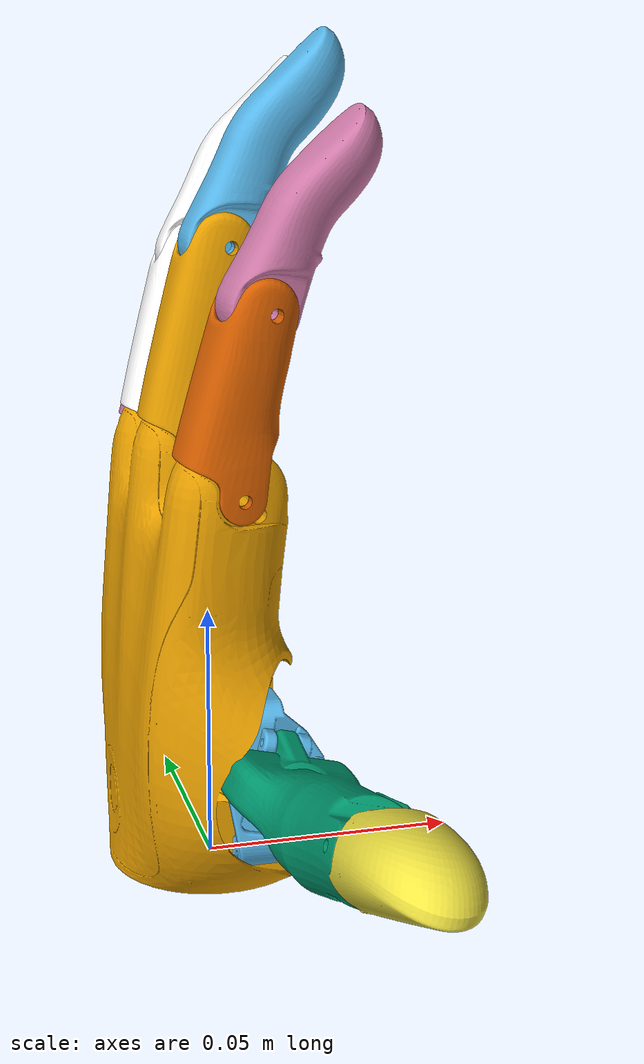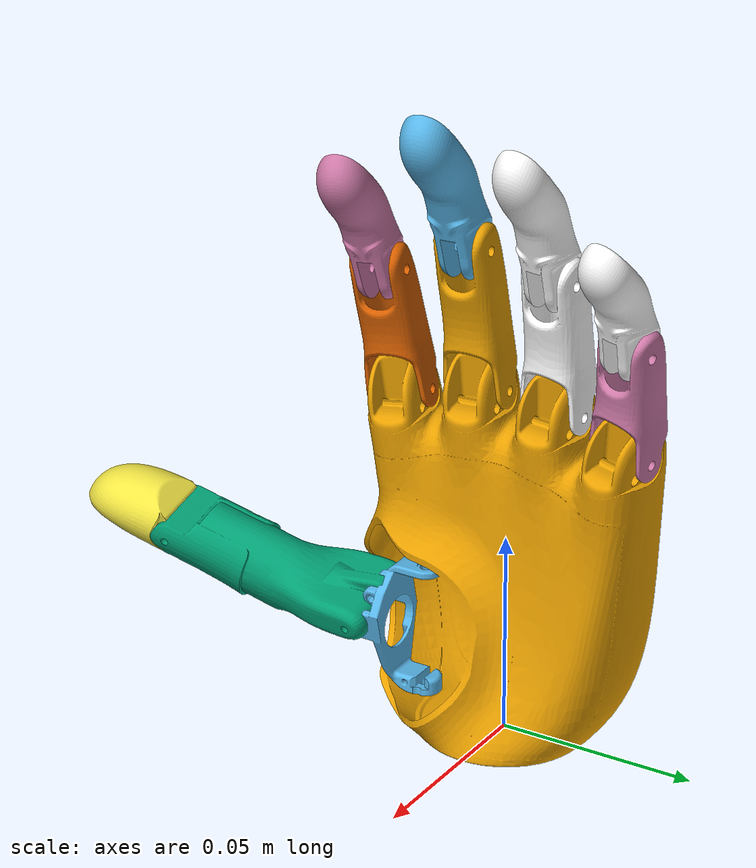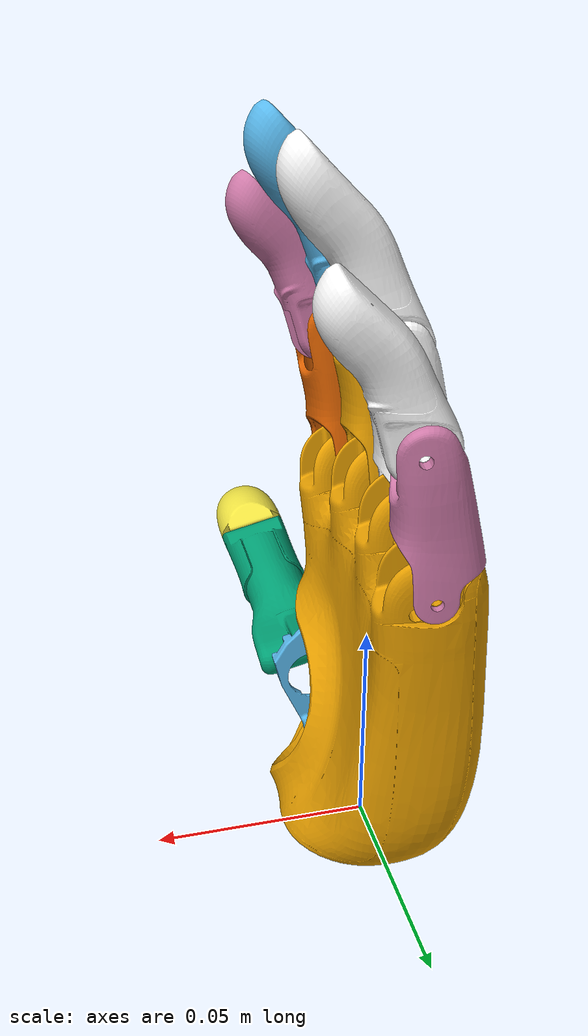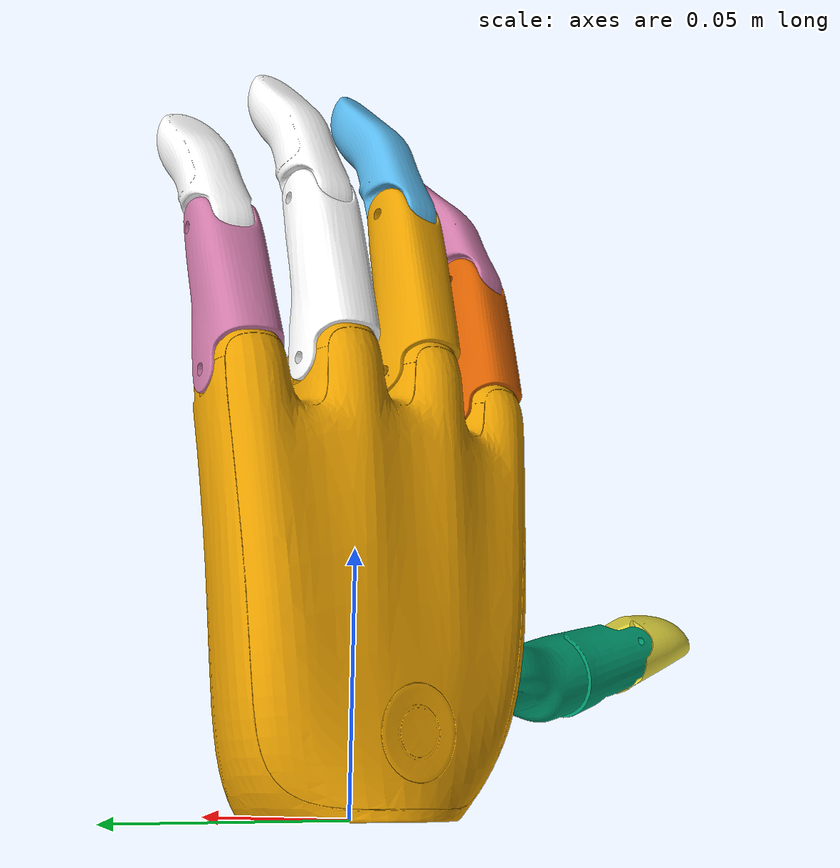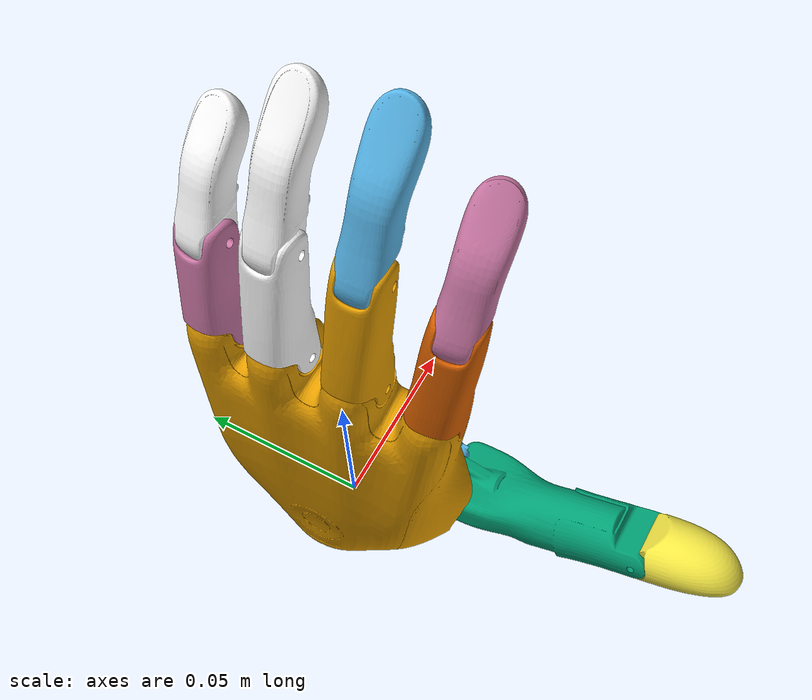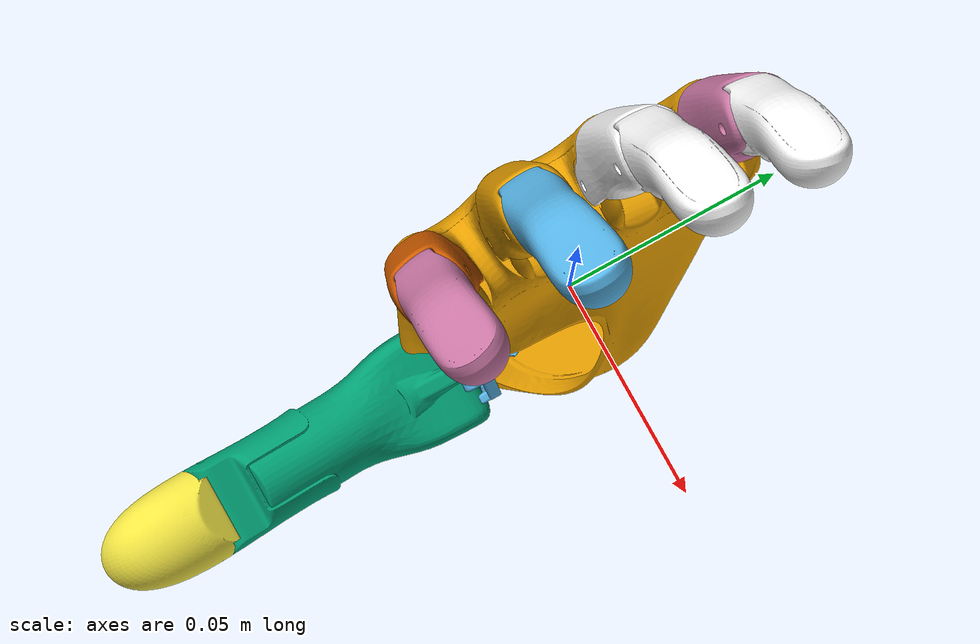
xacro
<?xml version="1.0" encoding="utf-8"?>
<robot name="BrainCo_$(arg type)" xmlns:xacro="http://www.ros.org/wiki/xacro">

	<xacro:arg name="type" default="Revo2"/>
	<xacro:arg name="direction" default="1"/>

	<xacro:include filename="$(find brainco_description)/xacro/revo2.xacro"/>

	<!-- 创建左手 (direction=1) -->
	<xacro:BraincoGripper name="" direction="$(arg direction)"/>

</robot>

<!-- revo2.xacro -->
<robot xmlns:xacro="http://www.ros.org/wiki/xacro">

	<xacro:macro name="BraincoGripper" params="name direction:=1">
		<xacro:property name="prefix" value="${name + '_' if name else ''}"/>

		<link name="${prefix}hand_base">
			<inertial>
				<origin xyz="-0.00478670623240344 ${direction*0.00141981128680179} 0.0505239077176535"/>
				<mass value="0.238"/>
				<inertia
						ixx="2.2266510056133E-05"
						ixy="${direction*-2.6318583761649E-07}"
						ixz="1.83638592892823E-07"
						iyy="1.55367220548952E-05"
						iyz="${direction*1.26586485241028E-06}"
						izz="8.58669326263691E-06"/>
			</inertial>
			<visual>
				<geometry>
					<mesh filename="file://$(find brainco_description)/meshes/revo2/base_link.obj" scale="1 ${direction} 1"/>
				</geometry>
			</visual>
			<collision>
				<geometry>
					<mesh filename="file://$(find brainco_description)/meshes/revo2/base_link.obj" scale="1 ${direction} 1"/>
				</geometry>
			</collision>
		</link>

		<!-- 拇指部分 -->
		<link name="${prefix}thumb_metacarpal_Link">
			<inertial>
				<origin xyz="${direction*1.52303696287007E-05} ${direction*-0.00707240283482268} ${direction*-0.00420839832903629}"/>
				<mass value="0.01"/>
				<inertia
						ixx="1.59238866130872E-07"
						ixy="4.69114607598504E-09"
						ixz="4.93233725002146E-10"
						iyy="1.60911967461755E-07"
						iyz="1.48144948560702E-08"
						izz="5.13544258620214E-08"/>
			</inertial>
			<visual>
				<geometry>
					<mesh filename="file://$(find brainco_description)/meshes/revo2/thumb_metacarpal.obj" scale="${direction} ${direction} ${direction}"/>
				</geometry>
			</visual>
			<collision>
				<geometry>
					<mesh filename="file://$(find brainco_description)/meshes/revo2/thumb_metacarpal.obj" scale="${direction} ${direction} ${direction}"/>
				</geometry>
			</collision>
		</link>

		<joint name="${prefix}thumb_metacarpal_joint" type="revolute">
			<origin
					xyz="${direction == 1 and 0.0045 or 0.005619} ${direction == 1 and -0.019 or 0.019867} 0.027825"
					rpy="${1.5708 - direction * 1.5708} 0 ${direction == 1 and 0.16787 or 2.9637}"/>
			<parent link="${prefix}hand_base"/>
			<child link="${prefix}thumb_metacarpal_Link"/>
			<axis xyz="0 0 1"/>
			<limit lower="0" upper="1.5184" effort="0.5" velocity="2.6175"/>
		</joint>

		<link name="${prefix}thumb_proximal_Link">
			<inertial>
				<origin xyz="3.41001513141231E-07 0.0250090688174992 -0.0017505675193664"/>
				<mass value="0.05"/>
				<inertia
						ixx="3.23318665954068E-06"
						ixy="1.54514148596387E-10"
						ixz="-1.24375216968143E-11"
						iyy="5.64488567432875E-07"
						iyz="5.04309083812214E-08"
						izz="3.39928573090826E-06"/>
			</inertial>
			<visual>
				<geometry>
					<mesh filename="file://$(find brainco_description)/meshes/revo2/thumb_proximal.obj"/>
				</geometry>
			</visual>
			<collision>
				<geometry>
					<mesh filename="file://$(find brainco_description)/meshes/revo2/thumb_proximal.obj"/>
				</geometry>
			</collision>
		</link>

		<joint name="${prefix}thumb_proximal_joint" type="revolute">
			<origin
					xyz="0 ${direction*-0.014227} 0"
					rpy="${direction == 1 and 0.17488 or -2.9667} -0.23736 2.9737"/>
			<parent
					link="${prefix}thumb_metacarpal_Link"/>
			<child
					link="${prefix}thumb_proximal_Link"/>
			<axis
					xyz="1 0 0"/>
			<limit
					lower="0"
					upper="1.0472"
					effort="1.1"
					velocity="2.5303"/>
		</joint>

		<link name="${prefix}thumb_distal_Link">
			<inertial>
				<origin
						xyz="-1.65618684180163E-07 0.0117550891981017 1.1366609064185E-05"
						/>
				<mass
						value="0.01"/>
				<inertia
						ixx="1.6780928553031E-07"
						ixy="1.91856562375255E-11"
						ixz="-2.694752026736E-12"
						iyy="1.15357239984326E-07"
						iyz="1.25182560702848E-08"
						izz="2.1956615213811E-07"/>
			</inertial>
			<visual>
				<geometry>
					<mesh filename="file://$(find brainco_description)/meshes/revo2/thumb_distal.obj"/>
				</geometry>
			</visual>
			<collision>
				<geometry>
					<mesh filename="file://$(find brainco_description)/meshes/revo2/thumb_distal.obj"/>
				</geometry>
			</collision>
		</link>

		<joint name="${prefix}thumb_distal_joint" type="revolute">
			<origin
					xyz="0 0.052 0"
					/>
			<parent
					link="${prefix}thumb_proximal_Link"/>
			<child
					link="${prefix}thumb_distal_Link"/>
			<axis
					xyz="1 0 0"/>
			<limit
					lower="0"
					upper="1.0472"
					effort="1.1"
					velocity="2.5303"/>
			<mimic
					joint="${prefix}thumb_proximal_joint"
					multiplier="1"
					offset="0"/>
		</joint>

		<link name="${prefix}thumb_tip_Link">
			<inertial>
				<origin xyz="-4.85722573273506E-17 -4.16333634234434E-17 -3.46944695195361E-18"/>
				<mass value="0.001"/>
				<inertia
						ixx="1.63624617374468E-15"
						ixy="0"
						ixz="0"
						iyy="1.63624617374468E-15"
						iyz="3.85185988877447E-33"
						izz="1.63624617374468E-15"/>
			</inertial>
		</link>

		<joint name="${prefix}thumb_tip_joint" type="revolute">
			<origin
					xyz="0 0.026528781163583 -0.00177344281307927"
					rpy="${direction == 1 and 0.0667504507189052 or -0.06675} 0 ${direction == 1 and 3.14159265358979 or 0}"/>
			<parent
					link="${prefix}thumb_distal_Link"/>
			<child
					link="${prefix}thumb_tip_Link"/>
			<axis
					xyz="-1 0 0"/>
			<limit
					lower="0"
					upper="0"
					effort="0"
					velocity="0"/>
		</joint>

		<!-- 食指部分 -->
		<link name="${prefix}index_proximal_Link">
			<inertial>
				<origin
						xyz="-0.002235387426012 -3.80544615179342E-06 0.0176439423080373"
						/>
				<mass
						value="0.009"/>
				<inertia
						ixx="2.51863526940901E-07"
						ixy="-3.10934654014177E-11"
						ixz="-6.36901300651624E-09"
						iyy="2.36343210839019E-07"
						iyz="-1.71663811116817E-10"
						izz="9.30397543724724E-08"/>
			</inertial>
			<visual>
				<geometry>
					<mesh
							filename="file://$(find brainco_description)/meshes/revo2/index_proximal.obj"/>
				</geometry>
			</visual>
			<collision>
				<geometry>
					<mesh
							filename="file://$(find brainco_description)/meshes/revo2/index_proximal.obj"/>
				</geometry>
			</collision>
		</link>

		<joint name="${prefix}index_proximal_joint" type="revolute">
			<origin
					xyz="-0.0021349 ${direction*-0.029578} 0.080876"
					rpy="${direction*0.11819} 0.14743 ${direction*0.17422}"/>
			<parent
					link="${prefix}hand_base"/>
			<child
					link="${prefix}index_proximal_Link"/>
			<axis
					xyz="0 1 0"/>
			<limit
					lower="0"
					upper="1.4661"
					effort="2"
					velocity="2.2685"/>
		</joint>

		<link name="${prefix}index_distal_Link">
			<inertial>
				<origin xyz="0.00418325886379583 -8.45607972810303E-08 0.0153641608762859"/>
				<mass value="0.009"/>
				<inertia
						ixx="3.65266271559531E-07"
						ixy="5.6892108332606E-13"
						ixz="-1.02335061442931E-07"
						iyy="3.96961530855654E-07"
						iyz="7.73961385851005E-13"
						izz="1.04991723103838E-07"/>
			</inertial>
			<visual>
				<geometry>
					<mesh filename="file://$(find brainco_description)/meshes/revo2/index_distal.obj"/>
				</geometry>
			</visual>
			<collision>
				<geometry>
					<mesh filename="file://$(find brainco_description)/meshes/revo2/index_distal.obj"/>
				</geometry>
			</collision>
		</link>

		<joint name="${prefix}index_distal_joint" type="revolute">
			<origin
					xyz="0 0 0.032"
					/>
			<parent
					link="${prefix}index_proximal_Link"/>
			<child
					link="${prefix}index_distal_Link"/>
			<axis
					xyz="0 1 0"/>
			<limit
					lower="0"
					upper="1.693"
					effort="2"
					velocity="2.2685"/>
			<mimic
					joint="${prefix}index_proximal_joint"
					multiplier="1.155"
					offset="0"/>
		</joint>

		<link name="${prefix}index_tip_Link">
			<inertial>
				<origin
						xyz="6.69832245225876E-13 9.73495589695617E-12 2.23557283796083E-13"
						/>
				<mass
						value="0.001"/>
				<inertia
						ixx="1.63624617374468E-15"
						ixy="6.16297582203915E-32"
						ixz="0"
						iyy="1.63624617374468E-15"
						iyz="2.46519032881566E-32"
						izz="1.63624617374468E-15"/>
			</inertial>
		</link>

		<joint name="${prefix}index_tip_joint" type="revolute">
			<origin
					xyz="0.011097 0 0.035739"
					rpy="0 0.48723 0"/>
			<parent
					link="${prefix}index_distal_Link"/>
			<child
					link="${prefix}index_tip_Link"/>
			<axis
					xyz="0 1 0"/>
			<limit
					lower="1"
					upper="1"
					effort="1"
					velocity="1"/>
		</joint>

		<!-- 中指部分 -->
		<link name="${prefix}middle_proximal_Link">
			<inertial>
				<origin
						xyz="-0.00222419445309931 -3.61990820813615E-06 0.0203049526045434"
						/>
				<mass
						value="0.009"/>
				<inertia
						ixx="3.66885320718611E-07"
						ixy="-3.64303343703497E-11"
						ixz="-9.77995332041374E-09"
						iyy="3.5252138716754E-07"
						iyz="-2.5809821190624E-10"
						izz="1.12242284171831E-07"/>
			</inertial>
			<visual>
				<geometry>
					<mesh
							filename="file://$(find brainco_description)/meshes/revo2/middle_proximal.obj"/>
				</geometry>
			</visual>
			<collision>
				<geometry>
					<mesh
							filename="file://$(find brainco_description)/meshes/revo2/middle_proximal.obj"/>
				</geometry>
			</collision>
		</link>

		<joint name="${prefix}middle_proximal_joint" type="revolute">
			<origin
					xyz="-0.0045935 ${direction*-0.010061} 0.084993"
					rpy="${direction*0.039468} 0.1483 ${direction*0.057975}"/>
			<parent
					link="${prefix}hand_base"/>
			<child
					link="${prefix}middle_proximal_Link"/>
			<axis
					xyz="0 1 0"/>
			<limit
					lower="0"
					upper="1.4661"
					effort="2"
					velocity="2.2685"/>
		</joint>

		<link name="${prefix}middle_distal_Link">
			<inertial>
				<origin xyz="0.00269750139301865 3.27210103736979E-07 0.0183076461156786"/>
				<mass value="0.009"/>
				<inertia
						ixx="5.88341898887764E-07"
						ixy="-1.34073376318216E-12"
						ixz="-1.04743131832206E-07"
						iyy="6.07118927271625E-07"
						iyz="-1.31817421243194E-11"
						izz="1.11265454837883E-07"/>
			</inertial>
			<visual>
				<geometry>
					<mesh filename="file://$(find brainco_description)/meshes/revo2/middle_distal.obj"/>
				</geometry>
			</visual>
			<collision>
				<geometry>
					<mesh filename="file://$(find brainco_description)/meshes/revo2/middle_distal.obj"/>
				</geometry>
			</collision>
		</link>

		<joint name="${prefix}middle_distal_joint" type="revolute">
			<origin
					xyz="0 0 0.037"
					rpy="0 0.12654 0"/>
			<parent
					link="${prefix}middle_proximal_Link"/>
			<child
					link="${prefix}middle_distal_Link"/>
			<axis
					xyz="0 1 0"/>
			<limit
					lower="0"
					upper="1.693"
					effort="2"
					velocity="2.2685"/>
			<mimic
					joint="${prefix}middle_proximal_joint"
					multiplier="1.155"
					offset="0"/>
		</joint>

		<link name="${prefix}middle_tip_Link">
			<inertial>
				<origin
						xyz="3.12250225675825E-16 -1.90819582357449E-17 5.55111512312578E-17"
						/>
				<mass
						value="0.001"/>
				<inertia
						ixx="1.63624617374468E-15"
						ixy="0"
						ixz="-4.93038065763132E-32"
						iyy="1.63624617374468E-15"
						iyz="9.24446373305873E-33"
						izz="1.63624617374468E-15"/>
			</inertial>
		</link>

		<joint name="${prefix}middle_tip_joint" type="revolute">
			<origin
					xyz="0.0073534 0 0.041703"
					rpy="0 0.34907 0"/>
			<parent
					link="${prefix}middle_distal_Link"/>
			<child
					link="${prefix}middle_tip_Link"/>
			<axis
					xyz="0 1 0"/>
			<limit
					lower="1"
					upper="1"
					effort="1"
					velocity="1"/>
		</joint>

		<!-- 无名指部分 -->
		<link name="${prefix}ring_proximal_Link">
			<inertial>
				<origin
						xyz="-0.00234461360118865 -5.32058096490429E-06 0.0191785931520923"
						/>
				<mass
						value="0.009"/>
				<inertia
						ixx="3.1418221085363E-07"
						ixy="-3.44825864493742E-11"
						ixz="-7.78011903077359E-09"
						iyy="2.97623388067888E-07"
						iyz="-2.45023710126388E-10"
						izz="1.02120946203075E-07"/>
			</inertial>
			<visual>
				<geometry>
					<mesh
							filename="file://$(find brainco_description)/meshes/revo2/ring_proximal.obj"/>
				</geometry>
				<material
						name="">
					<color
							rgba="1 1 1 1"/>
				</material>
			</visual>
			<collision>
				<geometry>
					<mesh
							filename="file://$(find brainco_description)/meshes/revo2/ring_proximal.obj"/>
				</geometry>
			</collision>
		</link>

		<joint name="${prefix}ring_proximal_joint" type="revolute">
			<origin
					xyz="-0.00468767815858587 ${direction*0.0100262714211602} 0.0839819548795939"
					rpy="${direction*-0.0394618478609065} 0.147209177132223 ${direction*-0.0579317909005277}"/>
			<parent
					link="${prefix}hand_base"/>
			<child
					link="${prefix}ring_proximal_Link"/>
			<axis
					xyz="0 1 0"/>
			<limit
					lower="0"
					upper="1.4661"
					effort="2"
					velocity="2.2685"/>
		</joint>

		<link name="${prefix}ring_distal_Link">
			<inertial>
				<origin
						xyz="0.00249839540877306 -2.78996376279483E-08 0.0177055538603162"
						/>
				<mass
						value="0.009"/>
				<inertia
						ixx="5.40369389752843E-07"
						ixy="-3.16120850919061E-12"
						ixz="-9.71738751449028E-08"
						iyy="5.56818359755755E-07"
						iyz="-5.08675656941986E-12"
						izz="1.03096676549004E-07"/>
			</inertial>
			<visual>
				<geometry>
					<mesh
							filename="file://$(find brainco_description)/meshes/revo2/ring_distal.obj"/>
				</geometry>
				<material
						name="">
					<color
							rgba="1 1 1 1"/>
				</material>
			</visual>
			<collision>
				<geometry>
					<mesh
							filename="file://$(find brainco_description)/meshes/revo2/ring_distal.obj"/>
				</geometry>
			</collision>
		</link>

		<joint name="${prefix}ring_distal_joint" type="revolute">
			<origin
					xyz="0 0 0.035"
					rpy="0 0.12654 0"/>
			<parent
					link="${prefix}ring_proximal_Link"/>
			<child
					link="${prefix}ring_distal_Link"/>
			<axis
					xyz="0 1 0"/>
			<limit
					lower="0"
					upper="1.693"
					effort="2"
					velocity="2.2685"/>
			<mimic
					joint="${prefix}ring_proximal_joint"
					multiplier="1.155"
					offset="0"/>
		</joint>

		<link name="${prefix}ring_tip_Link">
			<inertial>
				<origin
						xyz="3.05311331771918E-16 3.46944695195361E-17 2.77555756156289E-17"
						/>
				<mass
						value="0.001"/>
				<inertia
						ixx="1.63624617374468E-15"
						ixy="-1.23259516440783E-32"
						ixz="0"
						iyy="1.63624617374468E-15"
						iyz="0"
						izz="1.63624617374468E-15"/>
			</inertial>
		</link>

		<joint name="${prefix}ring_tip_joint" type="revolute">
			<origin
					xyz="0.0071824 0 0.040734"
					rpy="0 0.34907 0"/>
			<parent
					link="${prefix}ring_distal_Link"/>
			<child
					link="${prefix}ring_tip_Link"/>
			<axis
					xyz="0 1 0"/>
			<limit
					lower="1"
					upper="1"
					effort="1"
					velocity="1"/>
		</joint>

		<!-- 小指部分 -->
		<link name="${prefix}pinky_proximal_Link">
			<inertial>
				<origin xyz="-0.00213266608574047 -7.02260316783054E-06 0.0160680350593264"/>
				<mass value="0.009"/>
				<inertia
						ixx="1.97554078210582E-07"
						ixy="-1.34133676966608E-11"
						ixz="-4.58601823842206E-09"
						iyy="1.82022483454667E-07"
						iyz="-1.01838144940489E-10"
						izz="8.21758160050774E-08"/>
			</inertial>
			<visual>
				<geometry>
					<mesh filename="file://$(find brainco_description)/meshes/revo2/pinky_proximal.obj"/>
				</geometry>
			</visual>
			<collision>
				<geometry>
					<mesh filename="file://$(find brainco_description)/meshes/revo2/pinky_proximal.obj"/>
				</geometry>
			</collision>
		</link>

		<joint name="${prefix}pinky_proximal_joint" type="revolute">
			<origin
					xyz="-0.0023733 ${direction*0.029356} 0.078694"
					rpy="${direction*-0.11815} 0.14491 ${direction*-0.17392}"/>
			<parent
					link="${prefix}hand_base"/>
			<child
					link="${prefix}pinky_proximal_Link"/>
			<axis
					xyz="0 1 0"/>
			<limit
					lower="0"
					upper="1.4661"
					effort="2"
					velocity="2.2685"/>
		</joint>

		<link name="${prefix}pinky_distal_Link">
			<inertial>
				<origin
						xyz="0.0039856213046876 -8.08551930131518E-08 0.014106664402408"
						/>
				<mass
						value="0.009"/>
				<inertia
						ixx="2.88250623683654E-07"
						ixy="-1.42865648587319E-12"
						ixz="-7.78112273929214E-08"
						iyy="3.10833114148178E-07"
						iyz="1.51641220465817E-13"
						izz="9.12872269672051E-08"/>
			</inertial>
			<visual>
				<geometry>
					<mesh
							filename="file://$(find brainco_description)/meshes/revo2/pinky_distal.obj"/>
				</geometry>
				<material
						name="">
					<color
							rgba="1 1 1 1"/>
				</material>
			</visual>
			<collision>
				<geometry>
					<mesh
							filename="file://$(find brainco_description)/meshes/revo2/pinky_distal.obj"/>
				</geometry>
			</collision>
		</link>

		<joint name="${prefix}pinky_distal_joint" type="revolute">
			<origin
					xyz="0 0 0.029"
					/>
			<parent
					link="${prefix}pinky_proximal_Link"/>
			<child
					link="${prefix}pinky_distal_Link"/>
			<axis
					xyz="0 1 0"/>
			<limit
					lower="0"
					upper="1.693"
					effort="2"
					velocity="2.2685"/>
			<mimic
					joint="${prefix}pinky_proximal_joint"
					multiplier="1.155"
					offset="0"/>
		</joint>

		<link name="${prefix}pinky_tip_Link">
			<inertial>
				<origin
						xyz="2.63677968348475E-16 -4.09394740330526E-16 5.55111512312578E-17"
						/>
				<mass
						value="0.001"/>
				<inertia
						ixx="1.63624617374468E-15"
						ixy="1.23259516440783E-32"
						ixz="0"
						iyy="1.63624617374468E-15"
						iyz="-2.46519032881566E-32"
						izz="1.63624617374468E-15"/>
			</inertial>
		</link>

		<joint name="${prefix}pinky_tip_joint" type="revolute">
			<origin
					xyz="0.010221 0 0.032918"
					rpy="0 0.4756 0"/>
			<parent
					link="${prefix}pinky_distal_Link"/>
			<child
					link="${prefix}pinky_tip_Link"/>
			<axis
					xyz="0 1 0"/>
			<limit
					lower="1"
					upper="1"
					effort="1"
					velocity="1"/>
		</joint>

	</xacro:macro>

</robot>
